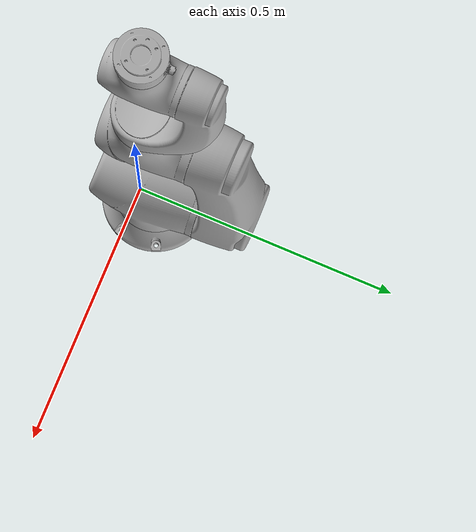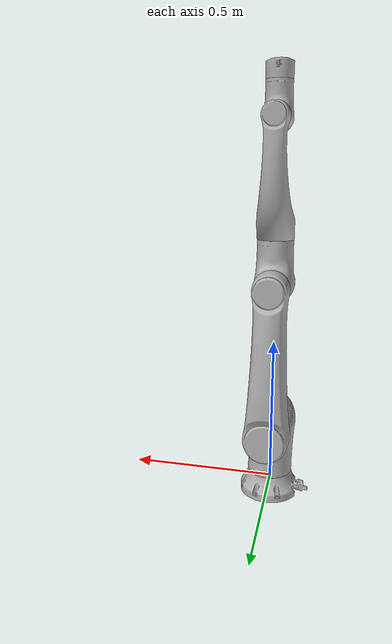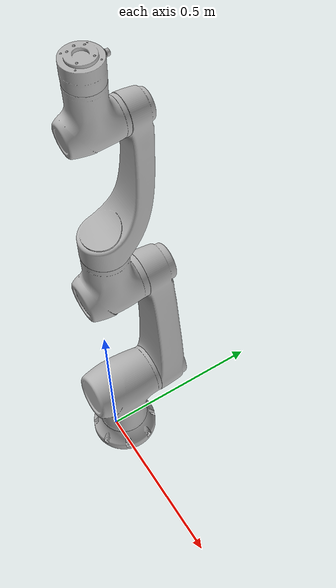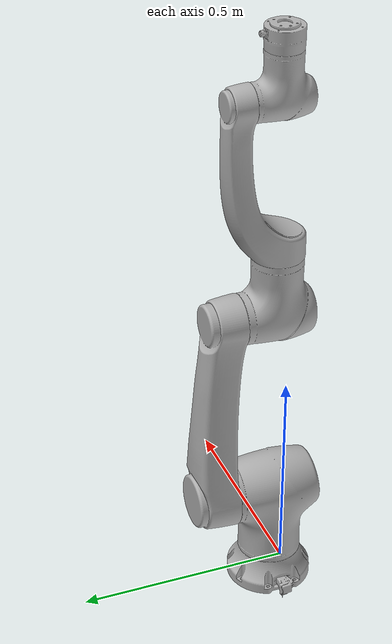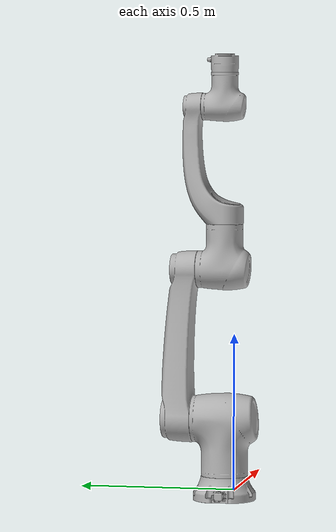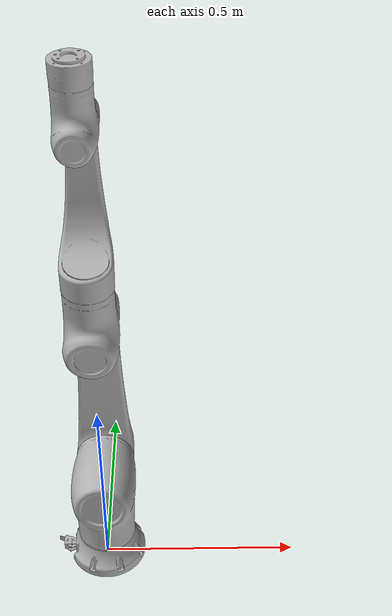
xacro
<?xml version="1.0" ?>
<robot name="CL110_CAD" xmlns:xacro="http://www.ros.org/wiki/xacro">

<xacro:include filename="$(find CL110_CAD_description)/urdf/materials.xacro" />
<xacro:include filename="$(find CL110_CAD_description)/urdf/CL110_CAD.trans" />
<xacro:include filename="$(find CL110_CAD_description)/urdf/CL110_CAD.gazebo" />
<link name="base_link">
  <inertial>
    <origin xyz="0.0020443369238353336 0.032031449819426544 -0.005484653052624675" rpy="0 0 0"/>
    <mass value="6.948667147505599"/>
    <inertia ixx="0.02378" iyy="0.022432" izz="0.042073" ixy="-5e-06" iyz="1e-06" ixz="0.000184"/>
  </inertial>
  <visual>
    <origin xyz="0 0 0" rpy="0 0 0"/>
    <geometry>
      <mesh filename="package://CL110_CAD_description/meshes/base_link.stl" scale="0.001 0.001 0.001"/>
    </geometry>
    <material name="silver"/>
  </visual>
  <collision>
    <origin xyz="0 0 0" rpy="0 0 0"/>
    <geometry>
      <mesh filename="package://CL110_CAD_description/meshes/base_link.stl" scale="0.001 0.001 0.001"/>
    </geometry>
  </collision>
</link>

<link name="link1_1">
  <inertial>
    <origin xyz="-2.539850796389549e-05 0.03174838191565383 0.11047110734888961" rpy="0 0 0"/>
    <mass value="26.50192961091554"/>
    <inertia ixx="0.295895" iyy="0.248198" izz="0.140838" ixy="-4.2e-05" iyz="-0.06183" ixz="2.3e-05"/>
  </inertial>
  <visual>
    <origin xyz="0.000379 -0.032033 -0.045088" rpy="0 0 0"/>
    <geometry>
      <mesh filename="package://CL110_CAD_description/meshes/link1_1.stl" scale="0.001 0.001 0.001"/>
    </geometry>
    <material name="silver"/>
  </visual>
  <collision>
    <origin xyz="0.000379 -0.032033 -0.045088" rpy="0 0 0"/>
    <geometry>
      <mesh filename="package://CL110_CAD_description/meshes/link1_1.stl" scale="0.001 0.001 0.001"/>
    </geometry>
  </collision>
</link>

<link name="link2_1">
  <inertial>
    <origin xyz="-5.783070392282913e-06 0.015355704260563763 0.20971244422320956" rpy="0 0 0"/>
    <mass value="16.195043980306405"/>
    <inertia ixx="0.577816" iyy="0.587265" izz="0.039298" ixy="-5e-06" iyz="0.03112" ixz="7.3e-05"/>
  </inertial>
  <visual>
    <origin xyz="0.000379 -0.166533 -0.227588" rpy="0 0 0"/>
    <geometry>
      <mesh filename="package://CL110_CAD_description/meshes/link2_1.stl" scale="0.001 0.001 0.001"/>
    </geometry>
    <material name="silver"/>
  </visual>
  <collision>
    <origin xyz="0.000379 -0.166533 -0.227588" rpy="0 0 0"/>
    <geometry>
      <mesh filename="package://CL110_CAD_description/meshes/link2_1.stl" scale="0.001 0.001 0.001"/>
    </geometry>
  </collision>
</link>

<link name="link3_1">
  <inertial>
    <origin xyz="3.69333761139417e-05 -0.08919811679725928 0.05666153234437854" rpy="0 0 0"/>
    <mass value="13.483560625053732"/>
    <inertia ixx="0.096515" iyy="0.078036" izz="0.048202" ixy="7e-06" iyz="0.018307" ixz="2.1e-05"/>
  </inertial>
  <visual>
    <origin xyz="0.000379 -0.145033 -0.707588" rpy="0 0 0"/>
    <geometry>
      <mesh filename="package://CL110_CAD_description/meshes/link3_1.stl" scale="0.001 0.001 0.001"/>
    </geometry>
    <material name="silver"/>
  </visual>
  <collision>
    <origin xyz="0.000379 -0.145033 -0.707588" rpy="0 0 0"/>
    <geometry>
      <mesh filename="package://CL110_CAD_description/meshes/link3_1.stl" scale="0.001 0.001 0.001"/>
    </geometry>
  </collision>
</link>

<link name="link4_1">
  <inertial>
    <origin xyz="-6.199176866582496e-06 0.061690239106159096 0.12732079659625384" rpy="0 0 0"/>
    <mass value="7.45163371296972"/>
    <inertia ixx="0.13763" iyy="0.12511" izz="0.02704" ixy="-1e-06" iyz="-0.033956" ixz="-8e-06"/>
  </inertial>
  <visual>
    <origin xyz="0.000379 -0.032033 -0.884588" rpy="0 0 0"/>
    <geometry>
      <mesh filename="package://CL110_CAD_description/meshes/link4_1.stl" scale="0.001 0.001 0.001"/>
    </geometry>
    <material name="silver"/>
  </visual>
  <collision>
    <origin xyz="0.000379 -0.032033 -0.884588" rpy="0 0 0"/>
    <geometry>
      <mesh filename="package://CL110_CAD_description/meshes/link4_1.stl" scale="0.001 0.001 0.001"/>
    </geometry>
  </collision>
</link>

<link name="link5_1">
  <inertial>
    <origin xyz="-9.959388625885356e-06 -0.069166005091335 0.042457639016239" rpy="0 0 0"/>
    <mass value="6.013138327914528"/>
    <inertia ixx="0.025811" iyy="0.019705" izz="0.012839" ixy="-5e-06" iyz="0.005428" ixz="1e-06"/>
  </inertial>
  <visual>
    <origin xyz="0.000379 -0.122033 -1.227588" rpy="0 0 0"/>
    <geometry>
      <mesh filename="package://CL110_CAD_description/meshes/link5_1.stl" scale="0.001 0.001 0.001"/>
    </geometry>
    <material name="silver"/>
  </visual>
  <collision>
    <origin xyz="0.000379 -0.122033 -1.227588" rpy="0 0 0"/>
    <geometry>
      <mesh filename="package://CL110_CAD_description/meshes/link5_1.stl" scale="0.001 0.001 0.001"/>
    </geometry>
  </collision>
</link>

<link name="link6_1">
  <inertial>
    <origin xyz="2.0557915098286196e-05 0.0004825157373782793 0.006553942053700412" rpy="0 0 0"/>
    <mass value="1.6111944965258764"/>
    <inertia ixx="0.001051" iyy="0.001016" izz="0.00166" ixy="0.0" iyz="-1e-06" ixz="-1e-06"/>
  </inertial>
  <visual>
    <origin xyz="0.000379 -0.032033 -1.367588" rpy="0 0 0"/>
    <geometry>
      <mesh filename="package://CL110_CAD_description/meshes/link6_1.stl" scale="0.001 0.001 0.001"/>
    </geometry>
    <material name="silver"/>
  </visual>
  <collision>
    <origin xyz="0.000379 -0.032033 -1.367588" rpy="0 0 0"/>
    <geometry>
      <mesh filename="package://CL110_CAD_description/meshes/link6_1.stl" scale="0.001 0.001 0.001"/>
    </geometry>
  </collision>
</link>

<joint name="j1" type="continuous">
  <origin xyz="-0.000379 0.032033 0.045088" rpy="0 0 0"/>
  <parent link="base_link"/>
  <child link="link1_1"/>
  <axis xyz="-0.0 0.0 -1.0"/>
</joint>

<joint name="j2" type="continuous">
  <origin xyz="0.0 0.1345 0.1825" rpy="0 0 0"/>
  <parent link="link1_1"/>
  <child link="link2_1"/>
  <axis xyz="-0.0 1.0 0.0"/>
</joint>

<joint name="j3" type="continuous">
  <origin xyz="0.0 -0.0215 0.48" rpy="0 0 0"/>
  <parent link="link2_1"/>
  <child link="link3_1"/>
  <axis xyz="-0.0 1.0 -0.0"/>
</joint>

<joint name="j4" type="continuous">
  <origin xyz="0.0 -0.113 0.177" rpy="0 0 0"/>
  <parent link="link3_1"/>
  <child link="link4_1"/>
  <axis xyz="0.0 0.0 1.0"/>
</joint>

<joint name="j5" type="continuous">
  <origin xyz="0.0 0.09 0.343" rpy="0 0 0"/>
  <parent link="link4_1"/>
  <child link="link5_1"/>
  <axis xyz="-0.0 1.0 0.0"/>
</joint>

<joint name="j6" type="continuous">
  <origin xyz="0.0 -0.09 0.14" rpy="0 0 0"/>
  <parent link="link5_1"/>
  <child link="link6_1"/>
  <axis xyz="0.0 0.0 1.0"/>
</joint>

</robot>

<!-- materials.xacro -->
<robot name="CL110_CAD" xmlns:xacro="http://www.ros.org/wiki/xacro" >

<material name="silver">
  <color rgba="0.700 0.700 0.700 1.000"/>
</material>

</robot>

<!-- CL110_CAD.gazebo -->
<robot name="CL110_CAD" xmlns:xacro="http://www.ros.org/wiki/xacro" >

<xacro:property name="body_color" value="Gazebo/Silver" />

<gazebo>
  <plugin name="control" filename="libgazebo_ros_control.so"/>
</gazebo>
<gazebo reference="base_link">
  <material>${body_color}</material>
  <mu1>0.2</mu1>
  <mu2>0.2</mu2>
  <selfCollide>true</selfCollide>
  <gravity>true</gravity>
</gazebo>

<gazebo reference="link1_1">
  <material>${body_color}</material>
  <mu1>0.2</mu1>
  <mu2>0.2</mu2>
  <selfCollide>true</selfCollide>
</gazebo>

<gazebo reference="link2_1">
  <material>${body_color}</material>
  <mu1>0.2</mu1>
  <mu2>0.2</mu2>
  <selfCollide>true</selfCollide>
</gazebo>

<gazebo reference="link3_1">
  <material>${body_color}</material>
  <mu1>0.2</mu1>
  <mu2>0.2</mu2>
  <selfCollide>true</selfCollide>
</gazebo>

<gazebo reference="link4_1">
  <material>${body_color}</material>
  <mu1>0.2</mu1>
  <mu2>0.2</mu2>
  <selfCollide>true</selfCollide>
</gazebo>

<gazebo reference="link5_1">
  <material>${body_color}</material>
  <mu1>0.2</mu1>
  <mu2>0.2</mu2>
  <selfCollide>true</selfCollide>
</gazebo>

<gazebo reference="link6_1">
  <material>${body_color}</material>
  <mu1>0.2</mu1>
  <mu2>0.2</mu2>
  <selfCollide>true</selfCollide>
</gazebo>

</robot>
